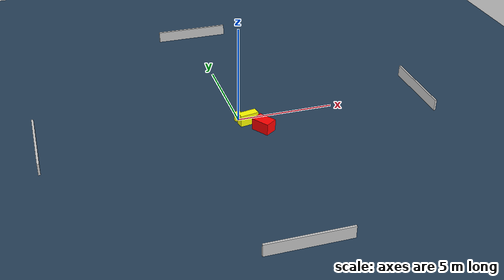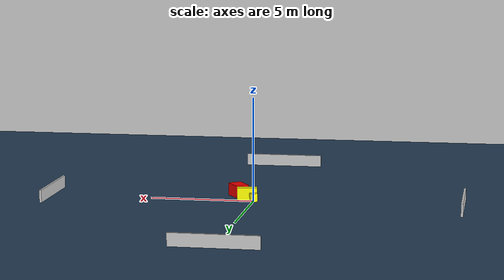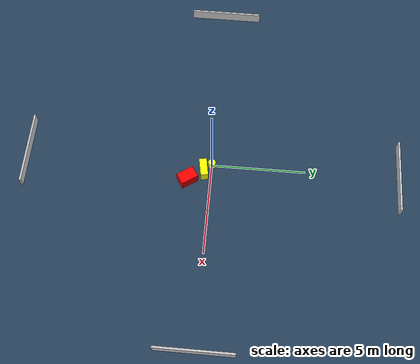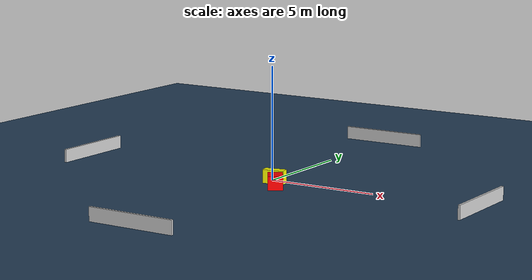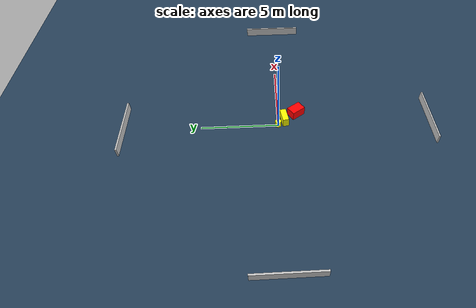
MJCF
<?xml version="1.0" ?>
<mujoco model="generated_environment">
  <option timestep="0.01" integrator="RK4" cone="elliptic"/>
  <default>
    <geom density="1"/>
  </default>
  <asset>
    <texture builtin="gradient" height="3072" name="skybox" rgb1="0.3 0.5 0.7" rgb2="0 0 0" type="skybox" width="512"/>
    <texture builtin="checker" height="300" name="groundplane" rgb1="0.2 0.3 0.4" rgb2="0.1 0.2 0.3" type="2d" width="300"/>
    <material name="groundplane" reflectance="0.2" texrepeat="5 5" texture="groundplane"/>
  </asset>
  <worldbody>
    <light dir="0 0 -1" directional="true" pos="0 0 1.5"/>
    <geom condim="3" friction="0.5 0.005 0.001" material="groundplane" name="floor" pos="0 0 0" size="0 0 0.05" type="plane"/>
    <body name="walls">
      <geom name="wall_1" condim="4" pos="-10.0 0.0 0.3" rgba="0.800000011920929 0.800000011920929 0.800000011920929 1.0" size="0.05 2.0 0.3" type="box"/>
      <geom name="wall_2" condim="4" pos="10.0 0.0 0.3" rgba="0.800000011920929 0.800000011920929 0.800000011920929 1.0" size="0.05 2.0 0.3" type="box"/>
      <geom name="wall_3" condim="4" pos="0.0 -10.0 0.3" rgba="0.800000011920929 0.800000011920929 0.800000011920929 1.0" size="2.0 0.05 0.3" type="box"/>
      <geom name="wall_4" condim="4" pos="0.0 10.0 0.3" rgba="0.800000011920929 0.800000011920929 0.800000011920929 1.0" size="2.0 0.05 0.3" type="box"/>
    </body>
    <body name="robot">
      <joint name="joint_x" type="slide" pos="0 0 0" axis="1 0 0"/>
      <joint name="joint_y" type="slide" pos="0 0 0" axis="0 1 0"/>
      <geom name="robot" type="cylinder" pos="0.0 0.0 0.2" size="0.2 0.2 0.0" mass="5.0" friction="1.0 0.005 0.0001" condim="4" rgba="1.0 1.0 0.0 1.0"/>
    </body>
    <body name="obstacle_1_movable">
      <geom name="obstacle_1_movable" condim="4" pos="0.38651960841494765 -0.4138854690303157 0.3" euler="0 0 100.0342277360632" friction="0.0 0.005 0.001" rgba="1.0 1.0 0.0 1.0" size="0.20106146319981394 0.48029516599894606 0.3" type="box" mass="0.1"/>
      <joint type="free"/>
    </body>
    <body name="obstacle_2_static">
      <geom name="obstacle_2_static" condim="4" pos="0.9520910036618726 -1.2275777759752282 0.3" euler="0 0 124.15170403188642" friction="0.0 0.005 0.001" rgba="1.0 0.0 0.0 1.0" size="0.47491074892858837 0.32533416676971916 0.3" type="box"/>
    </body>
  </worldbody>
  <actuator>
    <motor name="actuator_x" joint="joint_x" gear="1" ctrlrange="-1 1"/>
    <motor name="actuator_y" joint="joint_y" gear="1" ctrlrange="-1 1"/>
  </actuator>
</mujoco>
